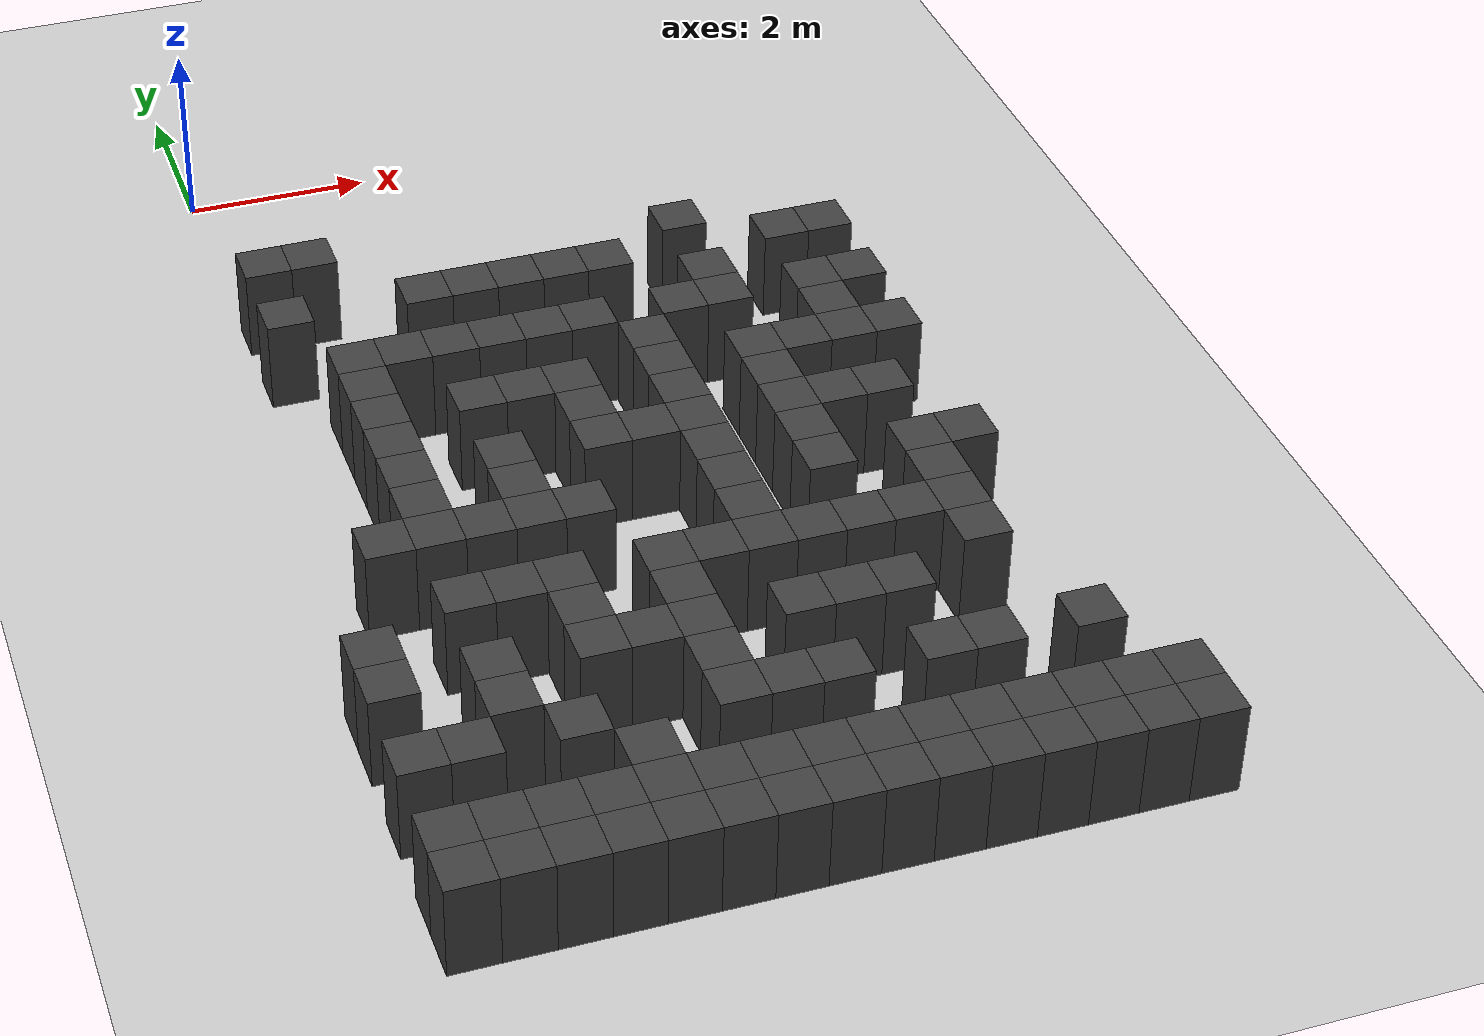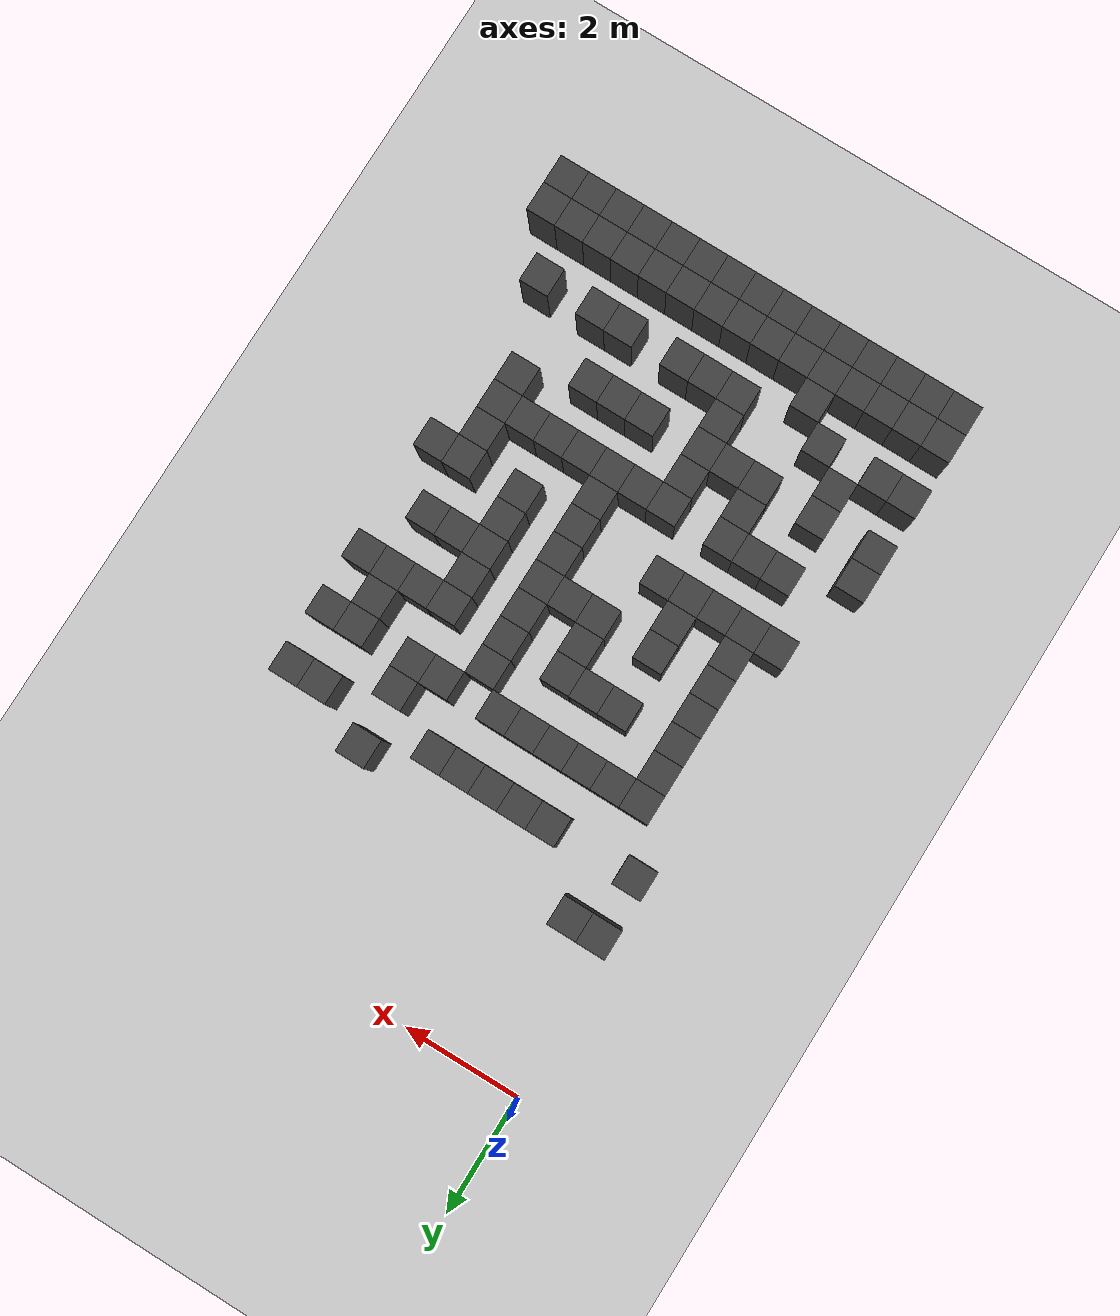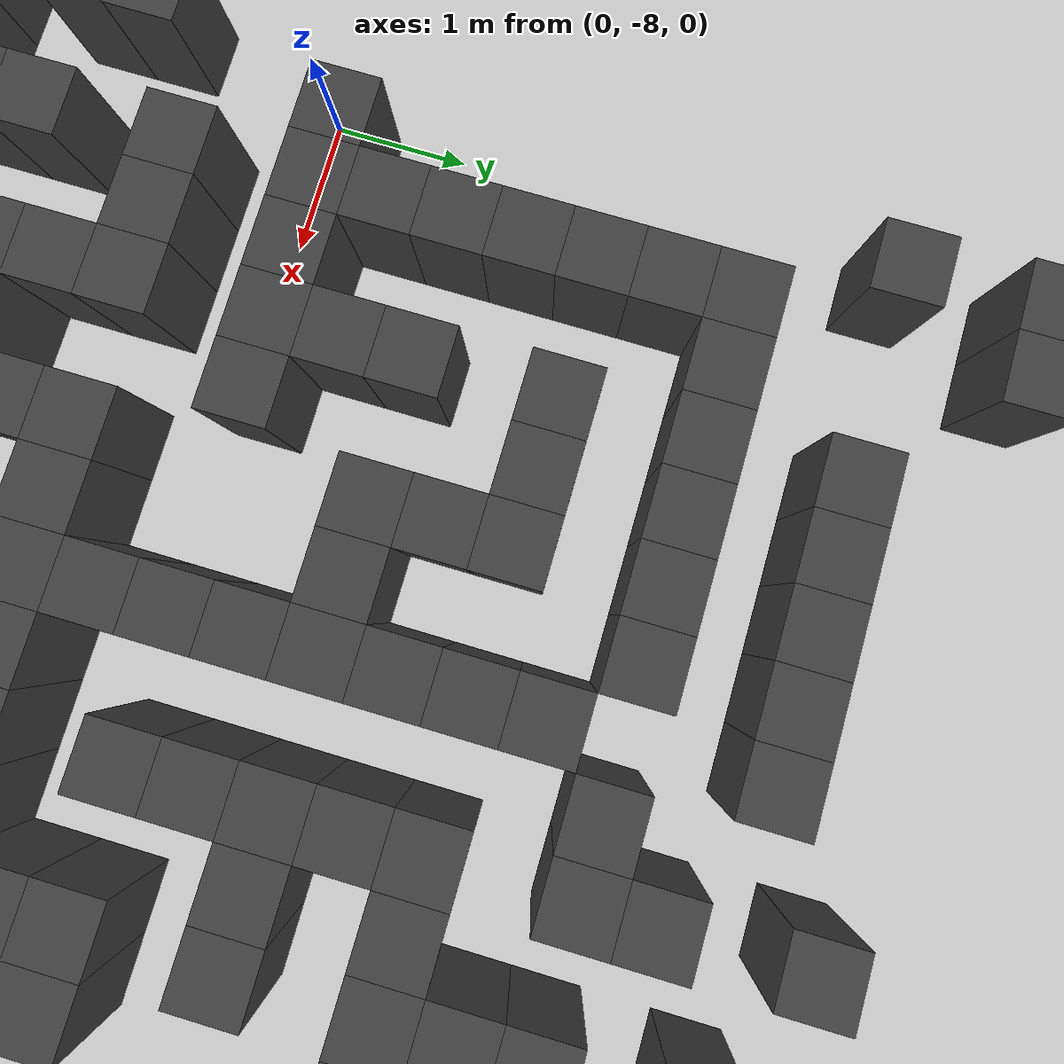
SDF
<sdf version="1.7">
 <world name="map_16884">
  <model name="ground_plane">
   <static>true</static>
   <link name="link">
    <collision name="collision">
     <geometry><plane><normal>0 0 1</normal><size>200 200</size></plane></geometry>
    </collision>
    <visual name="visual">
     <geometry><plane><normal>0 0 1</normal><size>200 200</size></plane></geometry>
     <material><ambient>0.8 0.8 0.8 1</ambient><diffuse>0.8 0.8 0.8 1</diffuse></material>
    </visual>
   </link>
  </model>
  <model name="maze_environment">
   <static>true</static>
   <link name="wall_742">
    <pose>0.250 -2.750 0.500 0 0 0</pose>
    <collision name="col"><geometry><box><size>0.5 0.5 1.0</size></box></geometry></collision>
    <visual name="vis">
     <geometry><box><size>0.5 0.5 1.0</size></box></geometry>
     <material><ambient>0.15 0.15 0.15 1</ambient><diffuse>0.25 0.25 0.25 1</diffuse></material>
    </visual>
   </link>
   <link name="wall_743">
    <pose>0.750 -2.750 0.500 0 0 0</pose>
    <collision name="col"><geometry><box><size>0.5 0.5 1.0</size></box></geometry></collision>
    <visual name="vis">
     <geometry><box><size>0.5 0.5 1.0</size></box></geometry>
     <material><ambient>0.15 0.15 0.15 1</ambient><diffuse>0.25 0.25 0.25 1</diffuse></material>
    </visual>
   </link>
   <link name="wall_767">
    <pose>4.750 -3.250 0.500 0 0 0</pose>
    <collision name="col"><geometry><box><size>0.5 0.5 1.0</size></box></geometry></collision>
    <visual name="vis">
     <geometry><box><size>0.5 0.5 1.0</size></box></geometry>
     <material><ambient>0.15 0.15 0.15 1</ambient><diffuse>0.25 0.25 0.25 1</diffuse></material>
    </visual>
   </link>
   <link name="wall_792">
    <pose>0.250 -3.750 0.500 0 0 0</pose>
    <collision name="col"><geometry><box><size>0.5 0.5 1.0</size></box></geometry></collision>
    <visual name="vis">
     <geometry><box><size>0.5 0.5 1.0</size></box></geometry>
     <material><ambient>0.15 0.15 0.15 1</ambient><diffuse>0.25 0.25 0.25 1</diffuse></material>
    </visual>
   </link>
   <link name="wall_793">
    <pose>1.750 -3.750 0.500 0 0 0</pose>
    <collision name="col"><geometry><box><size>0.5 0.5 1.0</size></box></geometry></collision>
    <visual name="vis">
     <geometry><box><size>0.5 0.5 1.0</size></box></geometry>
     <material><ambient>0.15 0.15 0.15 1</ambient><diffuse>0.25 0.25 0.25 1</diffuse></material>
    </visual>
   </link>
   <link name="wall_794">
    <pose>2.250 -3.750 0.500 0 0 0</pose>
    <collision name="col"><geometry><box><size>0.5 0.5 1.0</size></box></geometry></collision>
    <visual name="vis">
     <geometry><box><size>0.5 0.5 1.0</size></box></geometry>
     <material><ambient>0.15 0.15 0.15 1</ambient><diffuse>0.25 0.25 0.25 1</diffuse></material>
    </visual>
   </link>
   <link name="wall_795">
    <pose>2.750 -3.750 0.500 0 0 0</pose>
    <collision name="col"><geometry><box><size>0.5 0.5 1.0</size></box></geometry></collision>
    <visual name="vis">
     <geometry><box><size>0.5 0.5 1.0</size></box></geometry>
     <material><ambient>0.15 0.15 0.15 1</ambient><diffuse>0.25 0.25 0.25 1</diffuse></material>
    </visual>
   </link>
   <link name="wall_796">
    <pose>3.250 -3.750 0.500 0 0 0</pose>
    <collision name="col"><geometry><box><size>0.5 0.5 1.0</size></box></geometry></collision>
    <visual name="vis">
     <geometry><box><size>0.5 0.5 1.0</size></box></geometry>
     <material><ambient>0.15 0.15 0.15 1</ambient><diffuse>0.25 0.25 0.25 1</diffuse></material>
    </visual>
   </link>
   <link name="wall_797">
    <pose>3.750 -3.750 0.500 0 0 0</pose>
    <collision name="col"><geometry><box><size>0.5 0.5 1.0</size></box></geometry></collision>
    <visual name="vis">
     <geometry><box><size>0.5 0.5 1.0</size></box></geometry>
     <material><ambient>0.15 0.15 0.15 1</ambient><diffuse>0.25 0.25 0.25 1</diffuse></material>
    </visual>
   </link>
   <link name="wall_798">
    <pose>5.750 -3.750 0.500 0 0 0</pose>
    <collision name="col"><geometry><box><size>0.5 0.5 1.0</size></box></geometry></collision>
    <visual name="vis">
     <geometry><box><size>0.5 0.5 1.0</size></box></geometry>
     <material><ambient>0.15 0.15 0.15 1</ambient><diffuse>0.25 0.25 0.25 1</diffuse></material>
    </visual>
   </link>
   <link name="wall_799">
    <pose>6.250 -3.750 0.500 0 0 0</pose>
    <collision name="col"><geometry><box><size>0.5 0.5 1.0</size></box></geometry></collision>
    <visual name="vis">
     <geometry><box><size>0.5 0.5 1.0</size></box></geometry>
     <material><ambient>0.15 0.15 0.15 1</ambient><diffuse>0.25 0.25 0.25 1</diffuse></material>
    </visual>
   </link>
   <link name="wall_813">
    <pose>4.750 -4.250 0.500 0 0 0</pose>
    <collision name="col"><geometry><box><size>0.5 0.5 1.0</size></box></geometry></collision>
    <visual name="vis">
     <geometry><box><size>0.5 0.5 1.0</size></box></geometry>
     <material><ambient>0.15 0.15 0.15 1</ambient><diffuse>0.25 0.25 0.25 1</diffuse></material>
    </visual>
   </link>
   <link name="wall_840">
    <pose>0.750 -4.750 0.500 0 0 0</pose>
    <collision name="col"><geometry><box><size>0.5 0.5 1.0</size></box></geometry></collision>
    <visual name="vis">
     <geometry><box><size>0.5 0.5 1.0</size></box></geometry>
     <material><ambient>0.15 0.15 0.15 1</ambient><diffuse>0.25 0.25 0.25 1</diffuse></material>
    </visual>
   </link>
   <link name="wall_841">
    <pose>1.250 -4.750 0.500 0 0 0</pose>
    <collision name="col"><geometry><box><size>0.5 0.5 1.0</size></box></geometry></collision>
    <visual name="vis">
     <geometry><box><size>0.5 0.5 1.0</size></box></geometry>
     <material><ambient>0.15 0.15 0.15 1</ambient><diffuse>0.25 0.25 0.25 1</diffuse></material>
    </visual>
   </link>
   <link name="wall_842">
    <pose>1.750 -4.750 0.500 0 0 0</pose>
    <collision name="col"><geometry><box><size>0.5 0.5 1.0</size></box></geometry></collision>
    <visual name="vis">
     <geometry><box><size>0.5 0.5 1.0</size></box></geometry>
     <material><ambient>0.15 0.15 0.15 1</ambient><diffuse>0.25 0.25 0.25 1</diffuse></material>
    </visual>
   </link>
   <link name="wall_843">
    <pose>2.250 -4.750 0.500 0 0 0</pose>
    <collision name="col"><geometry><box><size>0.5 0.5 1.0</size></box></geometry></collision>
    <visual name="vis">
     <geometry><box><size>0.5 0.5 1.0</size></box></geometry>
     <material><ambient>0.15 0.15 0.15 1</ambient><diffuse>0.25 0.25 0.25 1</diffuse></material>
    </visual>
   </link>
   <link name="wall_844">
    <pose>2.750 -4.750 0.500 0 0 0</pose>
    <collision name="col"><geometry><box><size>0.5 0.5 1.0</size></box></geometry></collision>
    <visual name="vis">
     <geometry><box><size>0.5 0.5 1.0</size></box></geometry>
     <material><ambient>0.15 0.15 0.15 1</ambient><diffuse>0.25 0.25 0.25 1</diffuse></material>
    </visual>
   </link>
   <link name="wall_845">
    <pose>3.250 -4.750 0.500 0 0 0</pose>
    <collision name="col"><geometry><box><size>0.5 0.5 1.0</size></box></geometry></collision>
    <visual name="vis">
     <geometry><box><size>0.5 0.5 1.0</size></box></geometry>
     <material><ambient>0.15 0.15 0.15 1</ambient><diffuse>0.25 0.25 0.25 1</diffuse></material>
    </visual>
   </link>
   <link name="wall_846">
    <pose>4.250 -4.750 0.500 0 0 0</pose>
    <collision name="col"><geometry><box><size>0.5 0.5 1.0</size></box></geometry></collision>
    <visual name="vis">
     <geometry><box><size>0.5 0.5 1.0</size></box></geometry>
     <material><ambient>0.15 0.15 0.15 1</ambient><diffuse>0.25 0.25 0.25 1</diffuse></material>
    </visual>
   </link>
   <link name="wall_847">
    <pose>4.750 -4.750 0.500 0 0 0</pose>
    <collision name="col"><geometry><box><size>0.5 0.5 1.0</size></box></geometry></collision>
    <visual name="vis">
     <geometry><box><size>0.5 0.5 1.0</size></box></geometry>
     <material><ambient>0.15 0.15 0.15 1</ambient><diffuse>0.25 0.25 0.25 1</diffuse></material>
    </visual>
   </link>
   <link name="wall_848">
    <pose>5.750 -4.750 0.500 0 0 0</pose>
    <collision name="col"><geometry><box><size>0.5 0.5 1.0</size></box></geometry></collision>
    <visual name="vis">
     <geometry><box><size>0.5 0.5 1.0</size></box></geometry>
     <material><ambient>0.15 0.15 0.15 1</ambient><diffuse>0.25 0.25 0.25 1</diffuse></material>
    </visual>
   </link>
   <link name="wall_849">
    <pose>6.250 -4.750 0.500 0 0 0</pose>
    <collision name="col"><geometry><box><size>0.5 0.5 1.0</size></box></geometry></collision>
    <visual name="vis">
     <geometry><box><size>0.5 0.5 1.0</size></box></geometry>
     <material><ambient>0.15 0.15 0.15 1</ambient><diffuse>0.25 0.25 0.25 1</diffuse></material>
    </visual>
   </link>
   <link name="wall_865">
    <pose>0.750 -5.250 0.500 0 0 0</pose>
    <collision name="col"><geometry><box><size>0.5 0.5 1.0</size></box></geometry></collision>
    <visual name="vis">
     <geometry><box><size>0.5 0.5 1.0</size></box></geometry>
     <material><ambient>0.15 0.15 0.15 1</ambient><diffuse>0.25 0.25 0.25 1</diffuse></material>
    </visual>
   </link>
   <link name="wall_866">
    <pose>3.750 -5.250 0.500 0 0 0</pose>
    <collision name="col"><geometry><box><size>0.5 0.5 1.0</size></box></geometry></collision>
    <visual name="vis">
     <geometry><box><size>0.5 0.5 1.0</size></box></geometry>
     <material><ambient>0.15 0.15 0.15 1</ambient><diffuse>0.25 0.25 0.25 1</diffuse></material>
    </visual>
   </link>
   <link name="wall_867">
    <pose>5.750 -5.250 0.500 0 0 0</pose>
    <collision name="col"><geometry><box><size>0.5 0.5 1.0</size></box></geometry></collision>
    <visual name="vis">
     <geometry><box><size>0.5 0.5 1.0</size></box></geometry>
     <material><ambient>0.15 0.15 0.15 1</ambient><diffuse>0.25 0.25 0.25 1</diffuse></material>
    </visual>
   </link>
   <link name="wall_889">
    <pose>0.750 -5.750 0.500 0 0 0</pose>
    <collision name="col"><geometry><box><size>0.5 0.5 1.0</size></box></geometry></collision>
    <visual name="vis">
     <geometry><box><size>0.5 0.5 1.0</size></box></geometry>
     <material><ambient>0.15 0.15 0.15 1</ambient><diffuse>0.25 0.25 0.25 1</diffuse></material>
    </visual>
   </link>
   <link name="wall_890">
    <pose>1.750 -5.750 0.500 0 0 0</pose>
    <collision name="col"><geometry><box><size>0.5 0.5 1.0</size></box></geometry></collision>
    <visual name="vis">
     <geometry><box><size>0.5 0.5 1.0</size></box></geometry>
     <material><ambient>0.15 0.15 0.15 1</ambient><diffuse>0.25 0.25 0.25 1</diffuse></material>
    </visual>
   </link>
   <link name="wall_891">
    <pose>2.250 -5.750 0.500 0 0 0</pose>
    <collision name="col"><geometry><box><size>0.5 0.5 1.0</size></box></geometry></collision>
    <visual name="vis">
     <geometry><box><size>0.5 0.5 1.0</size></box></geometry>
     <material><ambient>0.15 0.15 0.15 1</ambient><diffuse>0.25 0.25 0.25 1</diffuse></material>
    </visual>
   </link>
   <link name="wall_892">
    <pose>2.750 -5.750 0.500 0 0 0</pose>
    <collision name="col"><geometry><box><size>0.5 0.5 1.0</size></box></geometry></collision>
    <visual name="vis">
     <geometry><box><size>0.5 0.5 1.0</size></box></geometry>
     <material><ambient>0.15 0.15 0.15 1</ambient><diffuse>0.25 0.25 0.25 1</diffuse></material>
    </visual>
   </link>
   <link name="wall_893">
    <pose>3.750 -5.750 0.500 0 0 0</pose>
    <collision name="col"><geometry><box><size>0.5 0.5 1.0</size></box></geometry></collision>
    <visual name="vis">
     <geometry><box><size>0.5 0.5 1.0</size></box></geometry>
     <material><ambient>0.15 0.15 0.15 1</ambient><diffuse>0.25 0.25 0.25 1</diffuse></material>
    </visual>
   </link>
   <link name="wall_894">
    <pose>4.750 -5.750 0.500 0 0 0</pose>
    <collision name="col"><geometry><box><size>0.5 0.5 1.0</size></box></geometry></collision>
    <visual name="vis">
     <geometry><box><size>0.5 0.5 1.0</size></box></geometry>
     <material><ambient>0.15 0.15 0.15 1</ambient><diffuse>0.25 0.25 0.25 1</diffuse></material>
    </visual>
   </link>
   <link name="wall_895">
    <pose>5.250 -5.750 0.500 0 0 0</pose>
    <collision name="col"><geometry><box><size>0.5 0.5 1.0</size></box></geometry></collision>
    <visual name="vis">
     <geometry><box><size>0.5 0.5 1.0</size></box></geometry>
     <material><ambient>0.15 0.15 0.15 1</ambient><diffuse>0.25 0.25 0.25 1</diffuse></material>
    </visual>
   </link>
   <link name="wall_896">
    <pose>5.750 -5.750 0.500 0 0 0</pose>
    <collision name="col"><geometry><box><size>0.5 0.5 1.0</size></box></geometry></collision>
    <visual name="vis">
     <geometry><box><size>0.5 0.5 1.0</size></box></geometry>
     <material><ambient>0.15 0.15 0.15 1</ambient><diffuse>0.25 0.25 0.25 1</diffuse></material>
    </visual>
   </link>
   <link name="wall_897">
    <pose>6.250 -5.750 0.500 0 0 0</pose>
    <collision name="col"><geometry><box><size>0.5 0.5 1.0</size></box></geometry></collision>
    <visual name="vis">
     <geometry><box><size>0.5 0.5 1.0</size></box></geometry>
     <material><ambient>0.15 0.15 0.15 1</ambient><diffuse>0.25 0.25 0.25 1</diffuse></material>
    </visual>
   </link>
   <link name="wall_912">
    <pose>0.750 -6.250 0.500 0 0 0</pose>
    <collision name="col"><geometry><box><size>0.5 0.5 1.0</size></box></geometry></collision>
    <visual name="vis">
     <geometry><box><size>0.5 0.5 1.0</size></box></geometry>
     <material><ambient>0.15 0.15 0.15 1</ambient><diffuse>0.25 0.25 0.25 1</diffuse></material>
    </visual>
   </link>
   <link name="wall_913">
    <pose>2.750 -6.250 0.500 0 0 0</pose>
    <collision name="col"><geometry><box><size>0.5 0.5 1.0</size></box></geometry></collision>
    <visual name="vis">
     <geometry><box><size>0.5 0.5 1.0</size></box></geometry>
     <material><ambient>0.15 0.15 0.15 1</ambient><diffuse>0.25 0.25 0.25 1</diffuse></material>
    </visual>
   </link>
   <link name="wall_914">
    <pose>3.750 -6.250 0.500 0 0 0</pose>
    <collision name="col"><geometry><box><size>0.5 0.5 1.0</size></box></geometry></collision>
    <visual name="vis">
     <geometry><box><size>0.5 0.5 1.0</size></box></geometry>
     <material><ambient>0.15 0.15 0.15 1</ambient><diffuse>0.25 0.25 0.25 1</diffuse></material>
    </visual>
   </link>
   <link name="wall_915">
    <pose>4.750 -6.250 0.500 0 0 0</pose>
    <collision name="col"><geometry><box><size>0.5 0.5 1.0</size></box></geometry></collision>
    <visual name="vis">
     <geometry><box><size>0.5 0.5 1.0</size></box></geometry>
     <material><ambient>0.15 0.15 0.15 1</ambient><diffuse>0.25 0.25 0.25 1</diffuse></material>
    </visual>
   </link>
   <link name="wall_937">
    <pose>0.750 -6.750 0.500 0 0 0</pose>
    <collision name="col"><geometry><box><size>0.5 0.5 1.0</size></box></geometry></collision>
    <visual name="vis">
     <geometry><box><size>0.5 0.5 1.0</size></box></geometry>
     <material><ambient>0.15 0.15 0.15 1</ambient><diffuse>0.25 0.25 0.25 1</diffuse></material>
    </visual>
   </link>
   <link name="wall_938">
    <pose>1.750 -6.750 0.500 0 0 0</pose>
    <collision name="col"><geometry><box><size>0.5 0.5 1.0</size></box></geometry></collision>
    <visual name="vis">
     <geometry><box><size>0.5 0.5 1.0</size></box></geometry>
     <material><ambient>0.15 0.15 0.15 1</ambient><diffuse>0.25 0.25 0.25 1</diffuse></material>
    </visual>
   </link>
   <link name="wall_939">
    <pose>2.750 -6.750 0.500 0 0 0</pose>
    <collision name="col"><geometry><box><size>0.5 0.5 1.0</size></box></geometry></collision>
    <visual name="vis">
     <geometry><box><size>0.5 0.5 1.0</size></box></geometry>
     <material><ambient>0.15 0.15 0.15 1</ambient><diffuse>0.25 0.25 0.25 1</diffuse></material>
    </visual>
   </link>
   <link name="wall_940">
    <pose>3.250 -6.750 0.500 0 0 0</pose>
    <collision name="col"><geometry><box><size>0.5 0.5 1.0</size></box></geometry></collision>
    <visual name="vis">
     <geometry><box><size>0.5 0.5 1.0</size></box></geometry>
     <material><ambient>0.15 0.15 0.15 1</ambient><diffuse>0.25 0.25 0.25 1</diffuse></material>
    </visual>
   </link>
   <link name="wall_941">
    <pose>3.750 -6.750 0.500 0 0 0</pose>
    <collision name="col"><geometry><box><size>0.5 0.5 1.0</size></box></geometry></collision>
    <visual name="vis">
     <geometry><box><size>0.5 0.5 1.0</size></box></geometry>
     <material><ambient>0.15 0.15 0.15 1</ambient><diffuse>0.25 0.25 0.25 1</diffuse></material>
    </visual>
   </link>
   <link name="wall_942">
    <pose>4.750 -6.750 0.500 0 0 0</pose>
    <collision name="col"><geometry><box><size>0.5 0.5 1.0</size></box></geometry></collision>
    <visual name="vis">
     <geometry><box><size>0.5 0.5 1.0</size></box></geometry>
     <material><ambient>0.15 0.15 0.15 1</ambient><diffuse>0.25 0.25 0.25 1</diffuse></material>
    </visual>
   </link>
   <link name="wall_943">
    <pose>5.250 -6.750 0.500 0 0 0</pose>
    <collision name="col"><geometry><box><size>0.5 0.5 1.0</size></box></geometry></collision>
    <visual name="vis">
     <geometry><box><size>0.5 0.5 1.0</size></box></geometry>
     <material><ambient>0.15 0.15 0.15 1</ambient><diffuse>0.25 0.25 0.25 1</diffuse></material>
    </visual>
   </link>
   <link name="wall_944">
    <pose>5.750 -6.750 0.500 0 0 0</pose>
    <collision name="col"><geometry><box><size>0.5 0.5 1.0</size></box></geometry></collision>
    <visual name="vis">
     <geometry><box><size>0.5 0.5 1.0</size></box></geometry>
     <material><ambient>0.15 0.15 0.15 1</ambient><diffuse>0.25 0.25 0.25 1</diffuse></material>
    </visual>
   </link>
   <link name="wall_959">
    <pose>0.750 -7.250 0.500 0 0 0</pose>
    <collision name="col"><geometry><box><size>0.5 0.5 1.0</size></box></geometry></collision>
    <visual name="vis">
     <geometry><box><size>0.5 0.5 1.0</size></box></geometry>
     <material><ambient>0.15 0.15 0.15 1</ambient><diffuse>0.25 0.25 0.25 1</diffuse></material>
    </visual>
   </link>
   <link name="wall_960">
    <pose>1.750 -7.250 0.500 0 0 0</pose>
    <collision name="col"><geometry><box><size>0.5 0.5 1.0</size></box></geometry></collision>
    <visual name="vis">
     <geometry><box><size>0.5 0.5 1.0</size></box></geometry>
     <material><ambient>0.15 0.15 0.15 1</ambient><diffuse>0.25 0.25 0.25 1</diffuse></material>
    </visual>
   </link>
   <link name="wall_961">
    <pose>3.750 -7.250 0.500 0 0 0</pose>
    <collision name="col"><geometry><box><size>0.5 0.5 1.0</size></box></geometry></collision>
    <visual name="vis">
     <geometry><box><size>0.5 0.5 1.0</size></box></geometry>
     <material><ambient>0.15 0.15 0.15 1</ambient><diffuse>0.25 0.25 0.25 1</diffuse></material>
    </visual>
   </link>
   <link name="wall_962">
    <pose>4.750 -7.250 0.500 0 0 0</pose>
    <collision name="col"><geometry><box><size>0.5 0.5 1.0</size></box></geometry></collision>
    <visual name="vis">
     <geometry><box><size>0.5 0.5 1.0</size></box></geometry>
     <material><ambient>0.15 0.15 0.15 1</ambient><diffuse>0.25 0.25 0.25 1</diffuse></material>
    </visual>
   </link>
   <link name="wall_985">
    <pose>0.250 -7.750 0.500 0 0 0</pose>
    <collision name="col"><geometry><box><size>0.5 0.5 1.0</size></box></geometry></collision>
    <visual name="vis">
     <geometry><box><size>0.5 0.5 1.0</size></box></geometry>
     <material><ambient>0.15 0.15 0.15 1</ambient><diffuse>0.25 0.25 0.25 1</diffuse></material>
    </visual>
   </link>
   <link name="wall_986">
    <pose>0.750 -7.750 0.500 0 0 0</pose>
    <collision name="col"><geometry><box><size>0.5 0.5 1.0</size></box></geometry></collision>
    <visual name="vis">
     <geometry><box><size>0.5 0.5 1.0</size></box></geometry>
     <material><ambient>0.15 0.15 0.15 1</ambient><diffuse>0.25 0.25 0.25 1</diffuse></material>
    </visual>
   </link>
   <link name="wall_987">
    <pose>1.250 -7.750 0.500 0 0 0</pose>
    <collision name="col"><geometry><box><size>0.5 0.5 1.0</size></box></geometry></collision>
    <visual name="vis">
     <geometry><box><size>0.5 0.5 1.0</size></box></geometry>
     <material><ambient>0.15 0.15 0.15 1</ambient><diffuse>0.25 0.25 0.25 1</diffuse></material>
    </visual>
   </link>
   <link name="wall_988">
    <pose>1.750 -7.750 0.500 0 0 0</pose>
    <collision name="col"><geometry><box><size>0.5 0.5 1.0</size></box></geometry></collision>
    <visual name="vis">
     <geometry><box><size>0.5 0.5 1.0</size></box></geometry>
     <material><ambient>0.15 0.15 0.15 1</ambient><diffuse>0.25 0.25 0.25 1</diffuse></material>
    </visual>
   </link>
   <link name="wall_989">
    <pose>2.250 -7.750 0.500 0 0 0</pose>
    <collision name="col"><geometry><box><size>0.5 0.5 1.0</size></box></geometry></collision>
    <visual name="vis">
     <geometry><box><size>0.5 0.5 1.0</size></box></geometry>
     <material><ambient>0.15 0.15 0.15 1</ambient><diffuse>0.25 0.25 0.25 1</diffuse></material>
    </visual>
   </link>
   <link name="wall_990">
    <pose>3.750 -7.750 0.500 0 0 0</pose>
    <collision name="col"><geometry><box><size>0.5 0.5 1.0</size></box></geometry></collision>
    <visual name="vis">
     <geometry><box><size>0.5 0.5 1.0</size></box></geometry>
     <material><ambient>0.15 0.15 0.15 1</ambient><diffuse>0.25 0.25 0.25 1</diffuse></material>
    </visual>
   </link>
   <link name="wall_991">
    <pose>4.750 -7.750 0.500 0 0 0</pose>
    <collision name="col"><geometry><box><size>0.5 0.5 1.0</size></box></geometry></collision>
    <visual name="vis">
     <geometry><box><size>0.5 0.5 1.0</size></box></geometry>
     <material><ambient>0.15 0.15 0.15 1</ambient><diffuse>0.25 0.25 0.25 1</diffuse></material>
    </visual>
   </link>
   <link name="wall_992">
    <pose>5.750 -7.750 0.500 0 0 0</pose>
    <collision name="col"><geometry><box><size>0.5 0.5 1.0</size></box></geometry></collision>
    <visual name="vis">
     <geometry><box><size>0.5 0.5 1.0</size></box></geometry>
     <material><ambient>0.15 0.15 0.15 1</ambient><diffuse>0.25 0.25 0.25 1</diffuse></material>
    </visual>
   </link>
   <link name="wall_993">
    <pose>6.250 -7.750 0.500 0 0 0</pose>
    <collision name="col"><geometry><box><size>0.5 0.5 1.0</size></box></geometry></collision>
    <visual name="vis">
     <geometry><box><size>0.5 0.5 1.0</size></box></geometry>
     <material><ambient>0.15 0.15 0.15 1</ambient><diffuse>0.25 0.25 0.25 1</diffuse></material>
    </visual>
   </link>
   <link name="wall_1010">
    <pose>3.750 -8.250 0.500 0 0 0</pose>
    <collision name="col"><geometry><box><size>0.5 0.5 1.0</size></box></geometry></collision>
    <visual name="vis">
     <geometry><box><size>0.5 0.5 1.0</size></box></geometry>
     <material><ambient>0.15 0.15 0.15 1</ambient><diffuse>0.25 0.25 0.25 1</diffuse></material>
    </visual>
   </link>
   <link name="wall_1011">
    <pose>5.750 -8.250 0.500 0 0 0</pose>
    <collision name="col"><geometry><box><size>0.5 0.5 1.0</size></box></geometry></collision>
    <visual name="vis">
     <geometry><box><size>0.5 0.5 1.0</size></box></geometry>
     <material><ambient>0.15 0.15 0.15 1</ambient><diffuse>0.25 0.25 0.25 1</diffuse></material>
    </visual>
   </link>
   <link name="wall_1030">
    <pose>0.750 -8.750 0.500 0 0 0</pose>
    <collision name="col"><geometry><box><size>0.5 0.5 1.0</size></box></geometry></collision>
    <visual name="vis">
     <geometry><box><size>0.5 0.5 1.0</size></box></geometry>
     <material><ambient>0.15 0.15 0.15 1</ambient><diffuse>0.25 0.25 0.25 1</diffuse></material>
    </visual>
   </link>
   <link name="wall_1031">
    <pose>1.250 -8.750 0.500 0 0 0</pose>
    <collision name="col"><geometry><box><size>0.5 0.5 1.0</size></box></geometry></collision>
    <visual name="vis">
     <geometry><box><size>0.5 0.5 1.0</size></box></geometry>
     <material><ambient>0.15 0.15 0.15 1</ambient><diffuse>0.25 0.25 0.25 1</diffuse></material>
    </visual>
   </link>
   <link name="wall_1032">
    <pose>1.750 -8.750 0.500 0 0 0</pose>
    <collision name="col"><geometry><box><size>0.5 0.5 1.0</size></box></geometry></collision>
    <visual name="vis">
     <geometry><box><size>0.5 0.5 1.0</size></box></geometry>
     <material><ambient>0.15 0.15 0.15 1</ambient><diffuse>0.25 0.25 0.25 1</diffuse></material>
    </visual>
   </link>
   <link name="wall_1033">
    <pose>2.750 -8.750 0.500 0 0 0</pose>
    <collision name="col"><geometry><box><size>0.5 0.5 1.0</size></box></geometry></collision>
    <visual name="vis">
     <geometry><box><size>0.5 0.5 1.0</size></box></geometry>
     <material><ambient>0.15 0.15 0.15 1</ambient><diffuse>0.25 0.25 0.25 1</diffuse></material>
    </visual>
   </link>
   <link name="wall_1034">
    <pose>3.250 -8.750 0.500 0 0 0</pose>
    <collision name="col"><geometry><box><size>0.5 0.5 1.0</size></box></geometry></collision>
    <visual name="vis">
     <geometry><box><size>0.5 0.5 1.0</size></box></geometry>
     <material><ambient>0.15 0.15 0.15 1</ambient><diffuse>0.25 0.25 0.25 1</diffuse></material>
    </visual>
   </link>
   <link name="wall_1035">
    <pose>3.750 -8.750 0.500 0 0 0</pose>
    <collision name="col"><geometry><box><size>0.5 0.5 1.0</size></box></geometry></collision>
    <visual name="vis">
     <geometry><box><size>0.5 0.5 1.0</size></box></geometry>
     <material><ambient>0.15 0.15 0.15 1</ambient><diffuse>0.25 0.25 0.25 1</diffuse></material>
    </visual>
   </link>
   <link name="wall_1036">
    <pose>4.250 -8.750 0.500 0 0 0</pose>
    <collision name="col"><geometry><box><size>0.5 0.5 1.0</size></box></geometry></collision>
    <visual name="vis">
     <geometry><box><size>0.5 0.5 1.0</size></box></geometry>
     <material><ambient>0.15 0.15 0.15 1</ambient><diffuse>0.25 0.25 0.25 1</diffuse></material>
    </visual>
   </link>
   <link name="wall_1037">
    <pose>4.750 -8.750 0.500 0 0 0</pose>
    <collision name="col"><geometry><box><size>0.5 0.5 1.0</size></box></geometry></collision>
    <visual name="vis">
     <geometry><box><size>0.5 0.5 1.0</size></box></geometry>
     <material><ambient>0.15 0.15 0.15 1</ambient><diffuse>0.25 0.25 0.25 1</diffuse></material>
    </visual>
   </link>
   <link name="wall_1038">
    <pose>5.250 -8.750 0.500 0 0 0</pose>
    <collision name="col"><geometry><box><size>0.5 0.5 1.0</size></box></geometry></collision>
    <visual name="vis">
     <geometry><box><size>0.5 0.5 1.0</size></box></geometry>
     <material><ambient>0.15 0.15 0.15 1</ambient><diffuse>0.25 0.25 0.25 1</diffuse></material>
    </visual>
   </link>
   <link name="wall_1039">
    <pose>5.750 -8.750 0.500 0 0 0</pose>
    <collision name="col"><geometry><box><size>0.5 0.5 1.0</size></box></geometry></collision>
    <visual name="vis">
     <geometry><box><size>0.5 0.5 1.0</size></box></geometry>
     <material><ambient>0.15 0.15 0.15 1</ambient><diffuse>0.25 0.25 0.25 1</diffuse></material>
    </visual>
   </link>
   <link name="wall_1054">
    <pose>-0.250 -9.250 0.500 0 0 0</pose>
    <collision name="col"><geometry><box><size>0.5 0.5 1.0</size></box></geometry></collision>
    <visual name="vis">
     <geometry><box><size>0.5 0.5 1.0</size></box></geometry>
     <material><ambient>0.15 0.15 0.15 1</ambient><diffuse>0.25 0.25 0.25 1</diffuse></material>
    </visual>
   </link>
   <link name="wall_1055">
    <pose>1.750 -9.250 0.500 0 0 0</pose>
    <collision name="col"><geometry><box><size>0.5 0.5 1.0</size></box></geometry></collision>
    <visual name="vis">
     <geometry><box><size>0.5 0.5 1.0</size></box></geometry>
     <material><ambient>0.15 0.15 0.15 1</ambient><diffuse>0.25 0.25 0.25 1</diffuse></material>
    </visual>
   </link>
   <link name="wall_1056">
    <pose>2.750 -9.250 0.500 0 0 0</pose>
    <collision name="col"><geometry><box><size>0.5 0.5 1.0</size></box></geometry></collision>
    <visual name="vis">
     <geometry><box><size>0.5 0.5 1.0</size></box></geometry>
     <material><ambient>0.15 0.15 0.15 1</ambient><diffuse>0.25 0.25 0.25 1</diffuse></material>
    </visual>
   </link>
   <link name="wall_1057">
    <pose>5.750 -9.250 0.500 0 0 0</pose>
    <collision name="col"><geometry><box><size>0.5 0.5 1.0</size></box></geometry></collision>
    <visual name="vis">
     <geometry><box><size>0.5 0.5 1.0</size></box></geometry>
     <material><ambient>0.15 0.15 0.15 1</ambient><diffuse>0.25 0.25 0.25 1</diffuse></material>
    </visual>
   </link>
   <link name="wall_1083">
    <pose>-0.250 -9.750 0.500 0 0 0</pose>
    <collision name="col"><geometry><box><size>0.5 0.5 1.0</size></box></geometry></collision>
    <visual name="vis">
     <geometry><box><size>0.5 0.5 1.0</size></box></geometry>
     <material><ambient>0.15 0.15 0.15 1</ambient><diffuse>0.25 0.25 0.25 1</diffuse></material>
    </visual>
   </link>
   <link name="wall_1084">
    <pose>0.750 -9.750 0.500 0 0 0</pose>
    <collision name="col"><geometry><box><size>0.5 0.5 1.0</size></box></geometry></collision>
    <visual name="vis">
     <geometry><box><size>0.5 0.5 1.0</size></box></geometry>
     <material><ambient>0.15 0.15 0.15 1</ambient><diffuse>0.25 0.25 0.25 1</diffuse></material>
    </visual>
   </link>
   <link name="wall_1085">
    <pose>1.750 -9.750 0.500 0 0 0</pose>
    <collision name="col"><geometry><box><size>0.5 0.5 1.0</size></box></geometry></collision>
    <visual name="vis">
     <geometry><box><size>0.5 0.5 1.0</size></box></geometry>
     <material><ambient>0.15 0.15 0.15 1</ambient><diffuse>0.25 0.25 0.25 1</diffuse></material>
    </visual>
   </link>
   <link name="wall_1086">
    <pose>2.250 -9.750 0.500 0 0 0</pose>
    <collision name="col"><geometry><box><size>0.5 0.5 1.0</size></box></geometry></collision>
    <visual name="vis">
     <geometry><box><size>0.5 0.5 1.0</size></box></geometry>
     <material><ambient>0.15 0.15 0.15 1</ambient><diffuse>0.25 0.25 0.25 1</diffuse></material>
    </visual>
   </link>
   <link name="wall_1087">
    <pose>2.750 -9.750 0.500 0 0 0</pose>
    <collision name="col"><geometry><box><size>0.5 0.5 1.0</size></box></geometry></collision>
    <visual name="vis">
     <geometry><box><size>0.5 0.5 1.0</size></box></geometry>
     <material><ambient>0.15 0.15 0.15 1</ambient><diffuse>0.25 0.25 0.25 1</diffuse></material>
    </visual>
   </link>
   <link name="wall_1088">
    <pose>3.750 -9.750 0.500 0 0 0</pose>
    <collision name="col"><geometry><box><size>0.5 0.5 1.0</size></box></geometry></collision>
    <visual name="vis">
     <geometry><box><size>0.5 0.5 1.0</size></box></geometry>
     <material><ambient>0.15 0.15 0.15 1</ambient><diffuse>0.25 0.25 0.25 1</diffuse></material>
    </visual>
   </link>
   <link name="wall_1089">
    <pose>4.250 -9.750 0.500 0 0 0</pose>
    <collision name="col"><geometry><box><size>0.5 0.5 1.0</size></box></geometry></collision>
    <visual name="vis">
     <geometry><box><size>0.5 0.5 1.0</size></box></geometry>
     <material><ambient>0.15 0.15 0.15 1</ambient><diffuse>0.25 0.25 0.25 1</diffuse></material>
    </visual>
   </link>
   <link name="wall_1090">
    <pose>4.750 -9.750 0.500 0 0 0</pose>
    <collision name="col"><geometry><box><size>0.5 0.5 1.0</size></box></geometry></collision>
    <visual name="vis">
     <geometry><box><size>0.5 0.5 1.0</size></box></geometry>
     <material><ambient>0.15 0.15 0.15 1</ambient><diffuse>0.25 0.25 0.25 1</diffuse></material>
    </visual>
   </link>
   <link name="wall_1106">
    <pose>0.750 -10.250 0.500 0 0 0</pose>
    <collision name="col"><geometry><box><size>0.5 0.5 1.0</size></box></geometry></collision>
    <visual name="vis">
     <geometry><box><size>0.5 0.5 1.0</size></box></geometry>
     <material><ambient>0.15 0.15 0.15 1</ambient><diffuse>0.25 0.25 0.25 1</diffuse></material>
    </visual>
   </link>
   <link name="wall_1107">
    <pose>2.750 -10.250 0.500 0 0 0</pose>
    <collision name="col"><geometry><box><size>0.5 0.5 1.0</size></box></geometry></collision>
    <visual name="vis">
     <geometry><box><size>0.5 0.5 1.0</size></box></geometry>
     <material><ambient>0.15 0.15 0.15 1</ambient><diffuse>0.25 0.25 0.25 1</diffuse></material>
    </visual>
   </link>
   <link name="wall_1131">
    <pose>-0.250 -10.750 0.500 0 0 0</pose>
    <collision name="col"><geometry><box><size>0.5 0.5 1.0</size></box></geometry></collision>
    <visual name="vis">
     <geometry><box><size>0.5 0.5 1.0</size></box></geometry>
     <material><ambient>0.15 0.15 0.15 1</ambient><diffuse>0.25 0.25 0.25 1</diffuse></material>
    </visual>
   </link>
   <link name="wall_1132">
    <pose>0.250 -10.750 0.500 0 0 0</pose>
    <collision name="col"><geometry><box><size>0.5 0.5 1.0</size></box></geometry></collision>
    <visual name="vis">
     <geometry><box><size>0.5 0.5 1.0</size></box></geometry>
     <material><ambient>0.15 0.15 0.15 1</ambient><diffuse>0.25 0.25 0.25 1</diffuse></material>
    </visual>
   </link>
   <link name="wall_1133">
    <pose>1.250 -10.750 0.500 0 0 0</pose>
    <collision name="col"><geometry><box><size>0.5 0.5 1.0</size></box></geometry></collision>
    <visual name="vis">
     <geometry><box><size>0.5 0.5 1.0</size></box></geometry>
     <material><ambient>0.15 0.15 0.15 1</ambient><diffuse>0.25 0.25 0.25 1</diffuse></material>
    </visual>
   </link>
   <link name="wall_1134">
    <pose>2.750 -10.750 0.500 0 0 0</pose>
    <collision name="col"><geometry><box><size>0.5 0.5 1.0</size></box></geometry></collision>
    <visual name="vis">
     <geometry><box><size>0.5 0.5 1.0</size></box></geometry>
     <material><ambient>0.15 0.15 0.15 1</ambient><diffuse>0.25 0.25 0.25 1</diffuse></material>
    </visual>
   </link>
   <link name="wall_1135">
    <pose>3.250 -10.750 0.500 0 0 0</pose>
    <collision name="col"><geometry><box><size>0.5 0.5 1.0</size></box></geometry></collision>
    <visual name="vis">
     <geometry><box><size>0.5 0.5 1.0</size></box></geometry>
     <material><ambient>0.15 0.15 0.15 1</ambient><diffuse>0.25 0.25 0.25 1</diffuse></material>
    </visual>
   </link>
   <link name="wall_1136">
    <pose>3.750 -10.750 0.500 0 0 0</pose>
    <collision name="col"><geometry><box><size>0.5 0.5 1.0</size></box></geometry></collision>
    <visual name="vis">
     <geometry><box><size>0.5 0.5 1.0</size></box></geometry>
     <material><ambient>0.15 0.15 0.15 1</ambient><diffuse>0.25 0.25 0.25 1</diffuse></material>
    </visual>
   </link>
   <link name="wall_1137">
    <pose>4.750 -10.750 0.500 0 0 0</pose>
    <collision name="col"><geometry><box><size>0.5 0.5 1.0</size></box></geometry></collision>
    <visual name="vis">
     <geometry><box><size>0.5 0.5 1.0</size></box></geometry>
     <material><ambient>0.15 0.15 0.15 1</ambient><diffuse>0.25 0.25 0.25 1</diffuse></material>
    </visual>
   </link>
   <link name="wall_1138">
    <pose>5.250 -10.750 0.500 0 0 0</pose>
    <collision name="col"><geometry><box><size>0.5 0.5 1.0</size></box></geometry></collision>
    <visual name="vis">
     <geometry><box><size>0.5 0.5 1.0</size></box></geometry>
     <material><ambient>0.15 0.15 0.15 1</ambient><diffuse>0.25 0.25 0.25 1</diffuse></material>
    </visual>
   </link>
   <link name="wall_1139">
    <pose>6.250 -10.750 0.500 0 0 0</pose>
    <collision name="col"><geometry><box><size>0.5 0.5 1.0</size></box></geometry></collision>
    <visual name="vis">
     <geometry><box><size>0.5 0.5 1.0</size></box></geometry>
     <material><ambient>0.15 0.15 0.15 1</ambient><diffuse>0.25 0.25 0.25 1</diffuse></material>
    </visual>
   </link>
   <link name="wall_1151">
    <pose>1.750 -11.250 0.500 0 0 0</pose>
    <collision name="col"><geometry><box><size>0.5 0.5 1.0</size></box></geometry></collision>
    <visual name="vis">
     <geometry><box><size>0.5 0.5 1.0</size></box></geometry>
     <material><ambient>0.15 0.15 0.15 1</ambient><diffuse>0.25 0.25 0.25 1</diffuse></material>
    </visual>
   </link>
   <link name="wall_1177">
    <pose>-0.250 -11.750 0.500 0 0 0</pose>
    <collision name="col"><geometry><box><size>0.5 0.5 1.0</size></box></geometry></collision>
    <visual name="vis">
     <geometry><box><size>0.5 0.5 1.0</size></box></geometry>
     <material><ambient>0.15 0.15 0.15 1</ambient><diffuse>0.25 0.25 0.25 1</diffuse></material>
    </visual>
   </link>
   <link name="wall_1178">
    <pose>0.250 -11.750 0.500 0 0 0</pose>
    <collision name="col"><geometry><box><size>0.5 0.5 1.0</size></box></geometry></collision>
    <visual name="vis">
     <geometry><box><size>0.5 0.5 1.0</size></box></geometry>
     <material><ambient>0.15 0.15 0.15 1</ambient><diffuse>0.25 0.25 0.25 1</diffuse></material>
    </visual>
   </link>
   <link name="wall_1179">
    <pose>0.750 -11.750 0.500 0 0 0</pose>
    <collision name="col"><geometry><box><size>0.5 0.5 1.0</size></box></geometry></collision>
    <visual name="vis">
     <geometry><box><size>0.5 0.5 1.0</size></box></geometry>
     <material><ambient>0.15 0.15 0.15 1</ambient><diffuse>0.25 0.25 0.25 1</diffuse></material>
    </visual>
   </link>
   <link name="wall_1180">
    <pose>1.250 -11.750 0.500 0 0 0</pose>
    <collision name="col"><geometry><box><size>0.5 0.5 1.0</size></box></geometry></collision>
    <visual name="vis">
     <geometry><box><size>0.5 0.5 1.0</size></box></geometry>
     <material><ambient>0.15 0.15 0.15 1</ambient><diffuse>0.25 0.25 0.25 1</diffuse></material>
    </visual>
   </link>
   <link name="wall_1181">
    <pose>1.750 -11.750 0.500 0 0 0</pose>
    <collision name="col"><geometry><box><size>0.5 0.5 1.0</size></box></geometry></collision>
    <visual name="vis">
     <geometry><box><size>0.5 0.5 1.0</size></box></geometry>
     <material><ambient>0.15 0.15 0.15 1</ambient><diffuse>0.25 0.25 0.25 1</diffuse></material>
    </visual>
   </link>
   <link name="wall_1182">
    <pose>2.250 -11.750 0.500 0 0 0</pose>
    <collision name="col"><geometry><box><size>0.5 0.5 1.0</size></box></geometry></collision>
    <visual name="vis">
     <geometry><box><size>0.5 0.5 1.0</size></box></geometry>
     <material><ambient>0.15 0.15 0.15 1</ambient><diffuse>0.25 0.25 0.25 1</diffuse></material>
    </visual>
   </link>
   <link name="wall_1183">
    <pose>2.750 -11.750 0.500 0 0 0</pose>
    <collision name="col"><geometry><box><size>0.5 0.5 1.0</size></box></geometry></collision>
    <visual name="vis">
     <geometry><box><size>0.5 0.5 1.0</size></box></geometry>
     <material><ambient>0.15 0.15 0.15 1</ambient><diffuse>0.25 0.25 0.25 1</diffuse></material>
    </visual>
   </link>
   <link name="wall_1184">
    <pose>3.250 -11.750 0.500 0 0 0</pose>
    <collision name="col"><geometry><box><size>0.5 0.5 1.0</size></box></geometry></collision>
    <visual name="vis">
     <geometry><box><size>0.5 0.5 1.0</size></box></geometry>
     <material><ambient>0.15 0.15 0.15 1</ambient><diffuse>0.25 0.25 0.25 1</diffuse></material>
    </visual>
   </link>
   <link name="wall_1185">
    <pose>3.750 -11.750 0.500 0 0 0</pose>
    <collision name="col"><geometry><box><size>0.5 0.5 1.0</size></box></geometry></collision>
    <visual name="vis">
     <geometry><box><size>0.5 0.5 1.0</size></box></geometry>
     <material><ambient>0.15 0.15 0.15 1</ambient><diffuse>0.25 0.25 0.25 1</diffuse></material>
    </visual>
   </link>
   <link name="wall_1186">
    <pose>4.250 -11.750 0.500 0 0 0</pose>
    <collision name="col"><geometry><box><size>0.5 0.5 1.0</size></box></geometry></collision>
    <visual name="vis">
     <geometry><box><size>0.5 0.5 1.0</size></box></geometry>
     <material><ambient>0.15 0.15 0.15 1</ambient><diffuse>0.25 0.25 0.25 1</diffuse></material>
    </visual>
   </link>
   <link name="wall_1187">
    <pose>4.750 -11.750 0.500 0 0 0</pose>
    <collision name="col"><geometry><box><size>0.5 0.5 1.0</size></box></geometry></collision>
    <visual name="vis">
     <geometry><box><size>0.5 0.5 1.0</size></box></geometry>
     <material><ambient>0.15 0.15 0.15 1</ambient><diffuse>0.25 0.25 0.25 1</diffuse></material>
    </visual>
   </link>
   <link name="wall_1188">
    <pose>5.250 -11.750 0.500 0 0 0</pose>
    <collision name="col"><geometry><box><size>0.5 0.5 1.0</size></box></geometry></collision>
    <visual name="vis">
     <geometry><box><size>0.5 0.5 1.0</size></box></geometry>
     <material><ambient>0.15 0.15 0.15 1</ambient><diffuse>0.25 0.25 0.25 1</diffuse></material>
    </visual>
   </link>
   <link name="wall_1189">
    <pose>5.750 -11.750 0.500 0 0 0</pose>
    <collision name="col"><geometry><box><size>0.5 0.5 1.0</size></box></geometry></collision>
    <visual name="vis">
     <geometry><box><size>0.5 0.5 1.0</size></box></geometry>
     <material><ambient>0.15 0.15 0.15 1</ambient><diffuse>0.25 0.25 0.25 1</diffuse></material>
    </visual>
   </link>
   <link name="wall_1190">
    <pose>6.250 -11.750 0.500 0 0 0</pose>
    <collision name="col"><geometry><box><size>0.5 0.5 1.0</size></box></geometry></collision>
    <visual name="vis">
     <geometry><box><size>0.5 0.5 1.0</size></box></geometry>
     <material><ambient>0.15 0.15 0.15 1</ambient><diffuse>0.25 0.25 0.25 1</diffuse></material>
    </visual>
   </link>
   <link name="wall_1191">
    <pose>6.750 -11.750 0.500 0 0 0</pose>
    <collision name="col"><geometry><box><size>0.5 0.5 1.0</size></box></geometry></collision>
    <visual name="vis">
     <geometry><box><size>0.5 0.5 1.0</size></box></geometry>
     <material><ambient>0.15 0.15 0.15 1</ambient><diffuse>0.25 0.25 0.25 1</diffuse></material>
    </visual>
   </link>
   <link name="wall_1225">
    <pose>-0.250 -12.250 0.500 0 0 0</pose>
    <collision name="col"><geometry><box><size>0.5 0.5 1.0</size></box></geometry></collision>
    <visual name="vis">
     <geometry><box><size>0.5 0.5 1.0</size></box></geometry>
     <material><ambient>0.15 0.15 0.15 1</ambient><diffuse>0.25 0.25 0.25 1</diffuse></material>
    </visual>
   </link>
   <link name="wall_1226">
    <pose>0.250 -12.250 0.500 0 0 0</pose>
    <collision name="col"><geometry><box><size>0.5 0.5 1.0</size></box></geometry></collision>
    <visual name="vis">
     <geometry><box><size>0.5 0.5 1.0</size></box></geometry>
     <material><ambient>0.15 0.15 0.15 1</ambient><diffuse>0.25 0.25 0.25 1</diffuse></material>
    </visual>
   </link>
   <link name="wall_1227">
    <pose>0.750 -12.250 0.500 0 0 0</pose>
    <collision name="col"><geometry><box><size>0.5 0.5 1.0</size></box></geometry></collision>
    <visual name="vis">
     <geometry><box><size>0.5 0.5 1.0</size></box></geometry>
     <material><ambient>0.15 0.15 0.15 1</ambient><diffuse>0.25 0.25 0.25 1</diffuse></material>
    </visual>
   </link>
   <link name="wall_1228">
    <pose>1.250 -12.250 0.500 0 0 0</pose>
    <collision name="col"><geometry><box><size>0.5 0.5 1.0</size></box></geometry></collision>
    <visual name="vis">
     <geometry><box><size>0.5 0.5 1.0</size></box></geometry>
     <material><ambient>0.15 0.15 0.15 1</ambient><diffuse>0.25 0.25 0.25 1</diffuse></material>
    </visual>
   </link>
   <link name="wall_1229">
    <pose>1.750 -12.250 0.500 0 0 0</pose>
    <collision name="col"><geometry><box><size>0.5 0.5 1.0</size></box></geometry></collision>
    <visual name="vis">
     <geometry><box><size>0.5 0.5 1.0</size></box></geometry>
     <material><ambient>0.15 0.15 0.15 1</ambient><diffuse>0.25 0.25 0.25 1</diffuse></material>
    </visual>
   </link>
   <link name="wall_1230">
    <pose>2.250 -12.250 0.500 0 0 0</pose>
    <collision name="col"><geometry><box><size>0.5 0.5 1.0</size></box></geometry></collision>
    <visual name="vis">
     <geometry><box><size>0.5 0.5 1.0</size></box></geometry>
     <material><ambient>0.15 0.15 0.15 1</ambient><diffuse>0.25 0.25 0.25 1</diffuse></material>
    </visual>
   </link>
   <link name="wall_1231">
    <pose>2.750 -12.250 0.500 0 0 0</pose>
    <collision name="col"><geometry><box><size>0.5 0.5 1.0</size></box></geometry></collision>
    <visual name="vis">
     <geometry><box><size>0.5 0.5 1.0</size></box></geometry>
     <material><ambient>0.15 0.15 0.15 1</ambient><diffuse>0.25 0.25 0.25 1</diffuse></material>
    </visual>
   </link>
   <link name="wall_1232">
    <pose>3.250 -12.250 0.500 0 0 0</pose>
    <collision name="col"><geometry><box><size>0.5 0.5 1.0</size></box></geometry></collision>
    <visual name="vis">
     <geometry><box><size>0.5 0.5 1.0</size></box></geometry>
     <material><ambient>0.15 0.15 0.15 1</ambient><diffuse>0.25 0.25 0.25 1</diffuse></material>
    </visual>
   </link>
   <link name="wall_1233">
    <pose>3.750 -12.250 0.500 0 0 0</pose>
    <collision name="col"><geometry><box><size>0.5 0.5 1.0</size></box></geometry></collision>
    <visual name="vis">
     <geometry><box><size>0.5 0.5 1.0</size></box></geometry>
     <material><ambient>0.15 0.15 0.15 1</ambient><diffuse>0.25 0.25 0.25 1</diffuse></material>
    </visual>
   </link>
   <link name="wall_1234">
    <pose>4.250 -12.250 0.500 0 0 0</pose>
    <collision name="col"><geometry><box><size>0.5 0.5 1.0</size></box></geometry></collision>
    <visual name="vis">
     <geometry><box><size>0.5 0.5 1.0</size></box></geometry>
     <material><ambient>0.15 0.15 0.15 1</ambient><diffuse>0.25 0.25 0.25 1</diffuse></material>
    </visual>
   </link>
   <link name="wall_1235">
    <pose>4.750 -12.250 0.500 0 0 0</pose>
    <collision name="col"><geometry><box><size>0.5 0.5 1.0</size></box></geometry></collision>
    <visual name="vis">
     <geometry><box><size>0.5 0.5 1.0</size></box></geometry>
     <material><ambient>0.15 0.15 0.15 1</ambient><diffuse>0.25 0.25 0.25 1</diffuse></material>
    </visual>
   </link>
   <link name="wall_1236">
    <pose>5.250 -12.250 0.500 0 0 0</pose>
    <collision name="col"><geometry><box><size>0.5 0.5 1.0</size></box></geometry></collision>
    <visual name="vis">
     <geometry><box><size>0.5 0.5 1.0</size></box></geometry>
     <material><ambient>0.15 0.15 0.15 1</ambient><diffuse>0.25 0.25 0.25 1</diffuse></material>
    </visual>
   </link>
   <link name="wall_1237">
    <pose>5.750 -12.250 0.500 0 0 0</pose>
    <collision name="col"><geometry><box><size>0.5 0.5 1.0</size></box></geometry></collision>
    <visual name="vis">
     <geometry><box><size>0.5 0.5 1.0</size></box></geometry>
     <material><ambient>0.15 0.15 0.15 1</ambient><diffuse>0.25 0.25 0.25 1</diffuse></material>
    </visual>
   </link>
   <link name="wall_1238">
    <pose>6.250 -12.250 0.500 0 0 0</pose>
    <collision name="col"><geometry><box><size>0.5 0.5 1.0</size></box></geometry></collision>
    <visual name="vis">
     <geometry><box><size>0.5 0.5 1.0</size></box></geometry>
     <material><ambient>0.15 0.15 0.15 1</ambient><diffuse>0.25 0.25 0.25 1</diffuse></material>
    </visual>
   </link>
   <link name="wall_1239">
    <pose>6.750 -12.250 0.500 0 0 0</pose>
    <collision name="col"><geometry><box><size>0.5 0.5 1.0</size></box></geometry></collision>
    <visual name="vis">
     <geometry><box><size>0.5 0.5 1.0</size></box></geometry>
     <material><ambient>0.15 0.15 0.15 1</ambient><diffuse>0.25 0.25 0.25 1</diffuse></material>
    </visual>
   </link>
  </model>
 </world>
</sdf>
